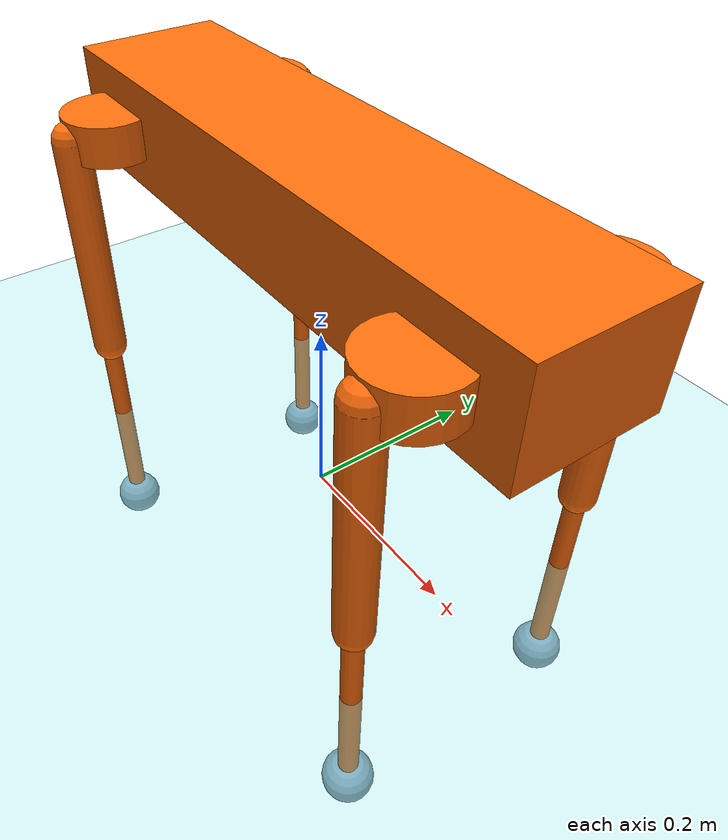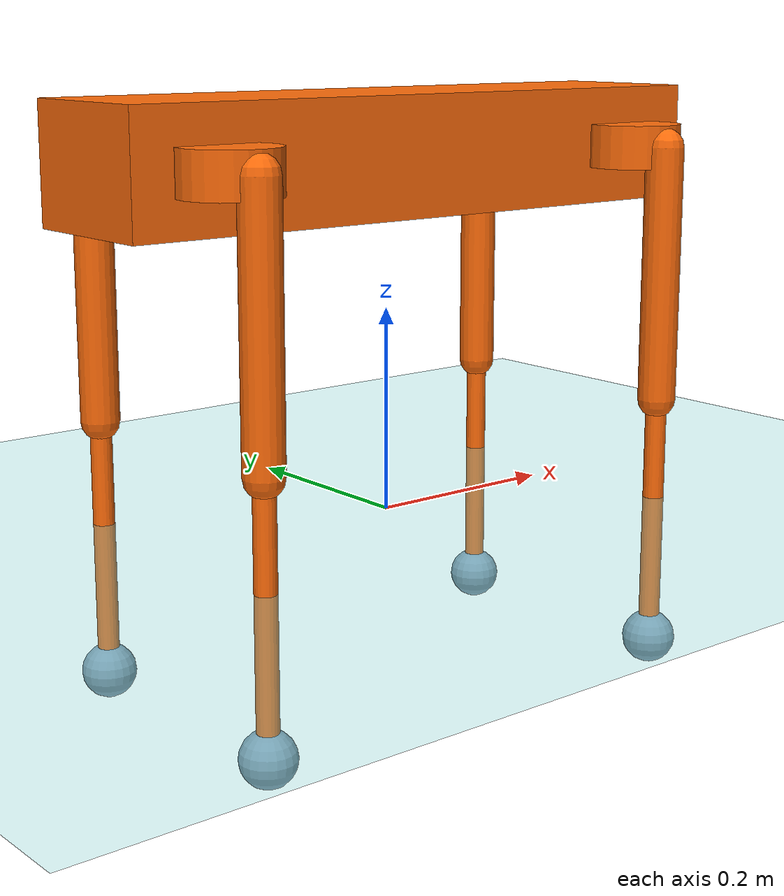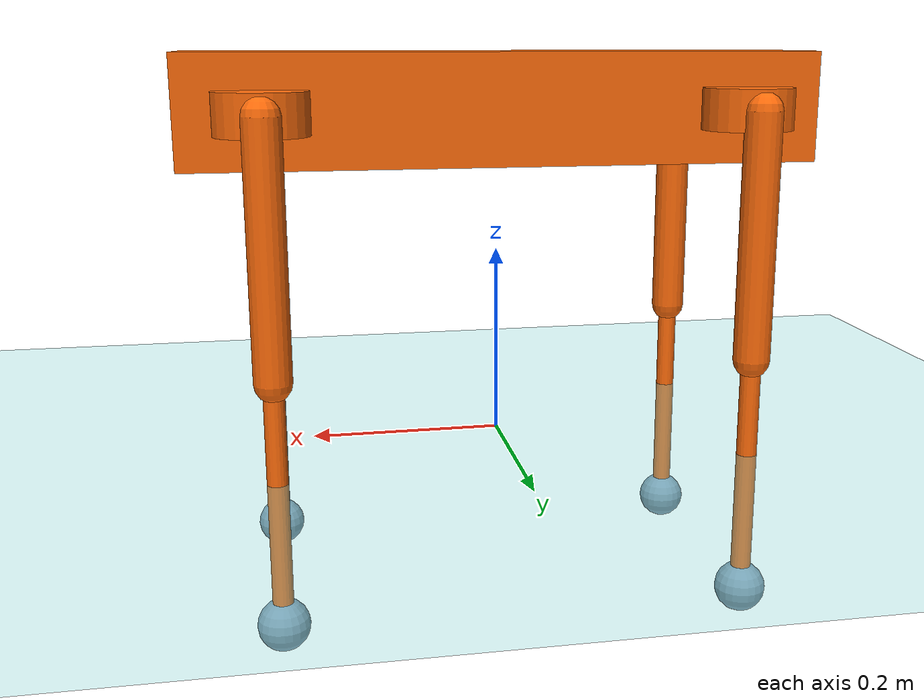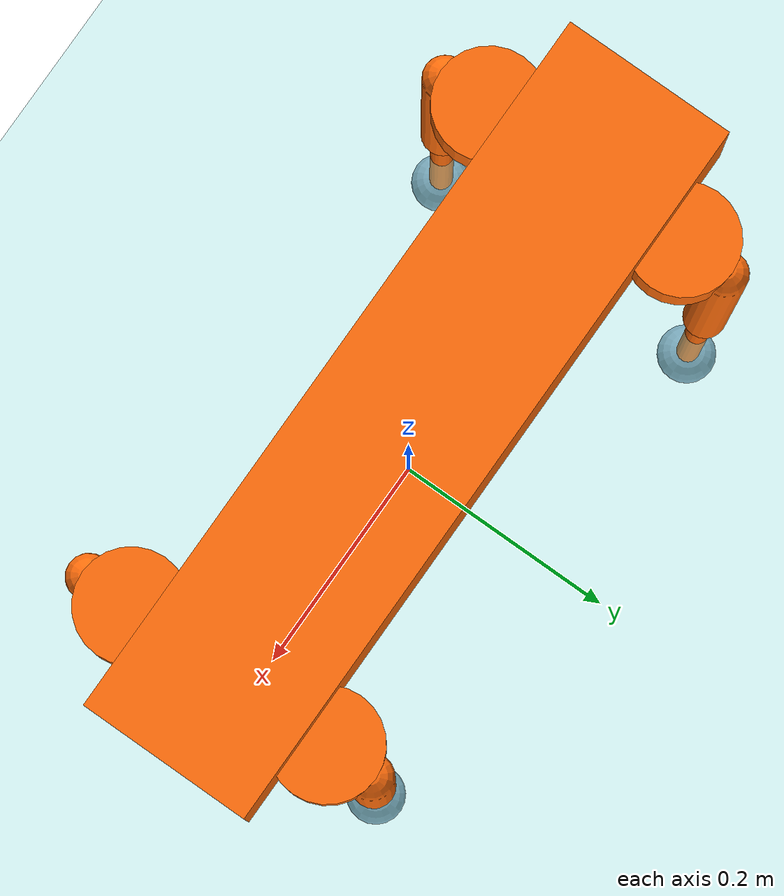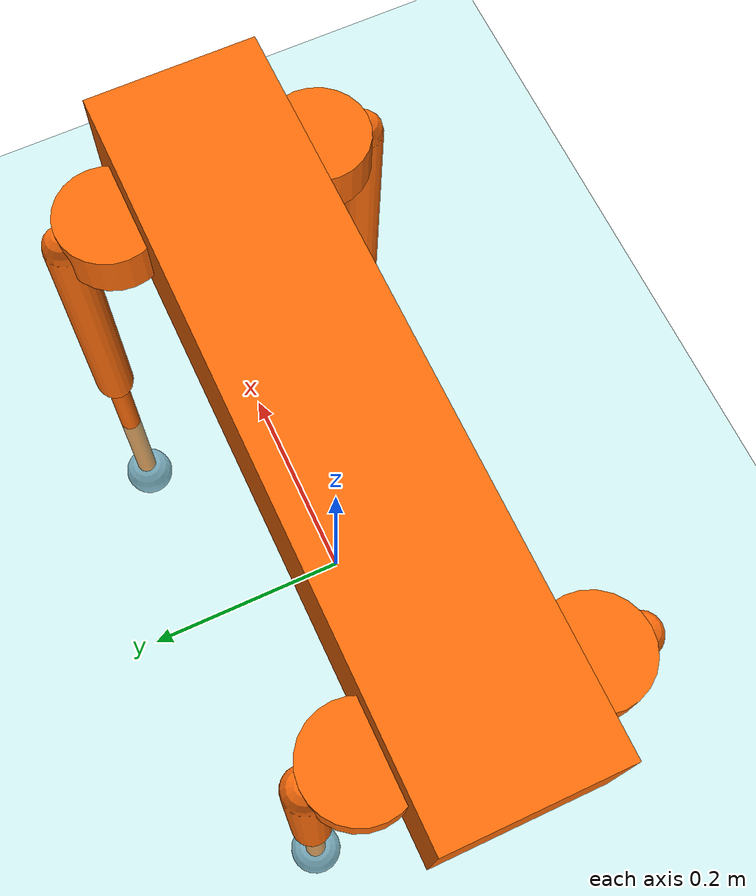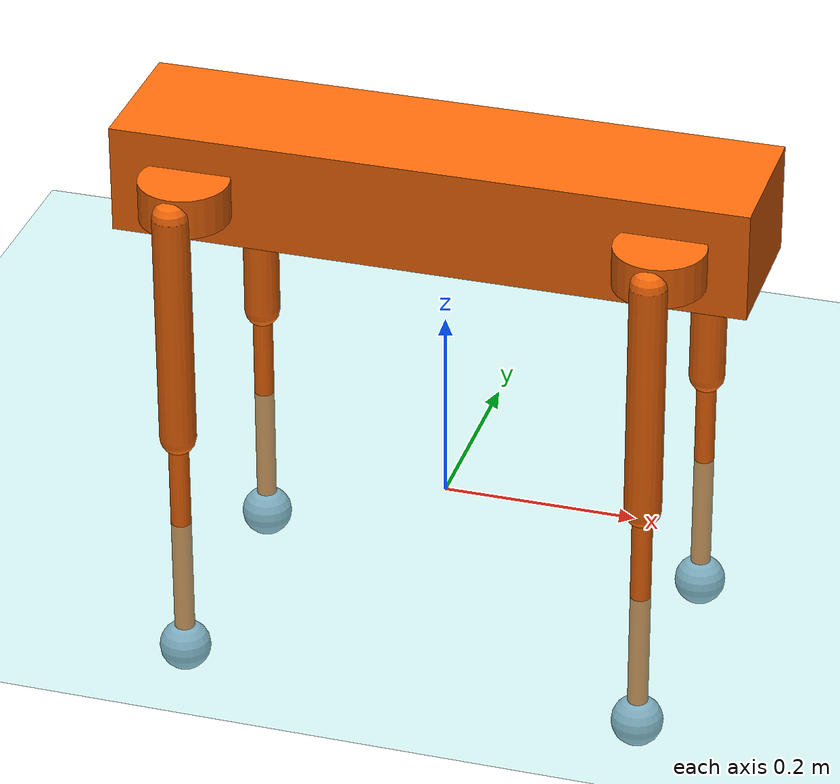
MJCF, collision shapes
<mujoco model="aliengo">
    <compiler angle="radian" meshdir="../meshes/" />

    <option iterations="50" timestep="0.002" />
    <custom>
        <!-- brax custom params -->
        <numeric data="0.0 0.0 0.34 1.0 0.0 0.0 0.0 -0.01014303 0.7180088 -1.4360176 0.01014303 0.7180088 -1.4360176 -0.01014303 0.7180088 -1.4360176 0.01014303 0.7180088 -1.4360176" name="init_qpos"/>
        <numeric data="0" name="matrix_inv_iterations"/>
        <numeric data="20" name="solver_maxls"/>
    </custom>

    <default>
        <geom contype="1" conaffinity="1" condim='3' rgba="0.5 0.6 0.7 1" group="0" />
        <light castshadow="false" diffuse="1 1 1"/>
        <motor ctrlrange="-44.0 44.0" ctrllimited="true"/>
        <camera fovy="60"/>
        <joint damping="0.0" armature="0.01" frictionloss="0.0" />
    </default>

    <asset>
        <mesh name="trunk" file="trunk.stl" />
        <mesh name="hip" file="hip.stl" />
        <mesh name="thigh_mirror" file="thigh_mirror.stl" />
        <mesh name="calf" file="calf.stl" />
        <mesh name="thigh" file="thigh.stl" />
    </asset>

    <asset>
        <texture type="skybox" builtin="gradient" rgb1="1.0 1.0 1.0" rgb2="1.0 1.0 1.0" width="512" height="512"/>
        <texture name="plane" type="2d" builtin="flat" rgb1="1 1 1" rgb2="1 1 1" width="512" height="512" mark="cross" markrgb="0 0 0"/>
        <material name="plane" reflectance="0.0" texture="plane" texrepeat="3 3" texuniform="true"/>
        <material name="orange" rgba="1.0 0.423529411765 0.0392156862745 1.0"/>
        <material name="green" rgba="0.0 0.8 0.0 1.0"/>
    </asset>

    <visual>
        <rgba com="0.502 1.0 0 0.5" contactforce="0.98 0.4 0.4 0.7" contactpoint="1.0 1.0 0.6 0.4"/>
        <scale com="0.2" forcewidth="0.035" contactwidth="0.10" contactheight="0.04"/>
    </visual>

    <worldbody>
        <light directional="true" diffuse=".8 .8 .8" pos="0 0 10" dir="0 0 -10"/>
        <camera name="track" mode="trackcom" pos="0 -1.3 1.6" xyaxes="1 0 0 0 0.707 0.707"/>
        <geom name='floor' type='plane' contype='1' conaffinity='0' rgba="0.5 0.9 0.9 0.1" material='plane' pos='0 0 0' size='10 10 0.1'/>

        <body name="trunk" pos="0 0 0.35">
            <inertial pos="0.008465 0.004045 -0.000763" mass="9.041" diaginertia="0.033260231 0.16117211 0.17460442" />
            <joint name="trunk" type="free" damping="0" armature="0" frictionloss="0"/>
            <geom type="mesh" contype="0" conaffinity="0" group="1" rgba="1.0 0.423529411765 0.0392156862745 1.0" mesh="trunk" />
            <geom contype="1" conaffinity="1" size="0.323 0.075 0.056" type="box" rgba="1.0 0.423529411765 0.0392156862745 0.1" />

            <body name="FR_hip" pos="0.2399 -0.051 0">
                <inertial pos="-0.022191 -0.015144 -1.5e-05" mass="1.993" diaginertia="0.002903894 0.004907517 0.005586944" />
                <joint name="FR_hip_joint" pos="0 0 0" axis="1 0 0" limited="true" range="-0.873 1.047" />
                <geom quat="0 1 0 0" type="mesh" contype="0" conaffinity="0" group="1" material="orange" mesh="hip" />
                <geom type="cylinder" size="0.046 0.0209" pos="0 -0.0415 0" contype="1" conaffinity="1" rgba="1.0 0.423529411765 0.0392156862745 0.1" />

                <body name="FR_thigh" pos="0 -0.083 0">
                    <inertial pos="-0.005607 0.003877 -0.048199" mass="0.639" diaginertia="0.005666803 0.005847229 0.000369811" />
                    <joint name="FR_thigh_joint" pos="0 0 0" axis="0 1 0" limited="true" range="-0.524 3.927" />
                    <geom type="mesh" contype="0" conaffinity="0" group="1" material="orange" mesh="thigh_mirror" />
                    <geom type="capsule" size="0.0187 0.125" pos="0 0 -0.125" contype="1" conaffinity="1" rgba="1.0 0.423529411765 0.0392156862745 0.1" />

                    <body name="FR_calf" pos="0 0 -0.25">
                        <inertial pos="0.002781 6.3e-05 -0.142518" mass="0.207" diaginertia="0.006341369 0.006355157 3.9188e-05" />
                        <joint name="FR_calf_joint" pos="0 0 0" axis="0 1 0" limited="true" range="-2.775 -0.611" />
                        <geom type="mesh" contype="0" conaffinity="0" group="1" material="orange" mesh="calf" />
                        <geom type="capsule" size="0.0104 0.125" pos="0 0 -0.125" contype="1" conaffinity="1" rgba="1.0 0.423529411765 0.0392156862745 0.1" />

                        <body name="FR_foot" pos="0 0 -0.25">
                            <inertial pos="0 0 0" mass="0.06" diaginertia="1.6854e-05 1.6854e-05 1.6854e-05" />
                            <geom size="0.0265" pos="0 0 0" type="sphere" material="green" contype="1" conaffinity="1" />
                        </body>
                    </body>
                </body>
            </body>

            <body name="FL_hip" pos="0.2399 0.051 0">
                <inertial pos="-0.022191 0.015144 -1.5e-05" mass="1.993" diaginertia="0.002903894 0.004907517 0.005586944" />
                <joint name="FL_hip_joint" pos="0 0 0" axis="1 0 0" limited="true" range="-0.873 1.047" />
                <geom type="mesh" contype="0" conaffinity="0" group="1" material="orange" mesh="hip" />
                <geom type="cylinder" size="0.046 0.0209" pos="0 0.0415 0" contype="1" conaffinity="1" rgba="1.0 0.423529411765 0.0392156862745 0.1" />

                <body name="FL_thigh" pos="0 0.083 0">
                    <inertial pos="-0.005607 -0.003877 -0.048199" mass="0.639" diaginertia="0.005666803 0.005847229 0.000369811" />
                    <joint name="FL_thigh_joint" pos="0 0 0" axis="0 1 0" limited="true" range="-0.524 3.927" />
                    <geom type="mesh" contype="0" conaffinity="0" group="1" material="orange" mesh="thigh" />
                    <geom type="capsule" size="0.0187 0.125" pos="0 0 -0.125" contype="1" conaffinity="1" rgba="1.0 0.423529411765 0.0392156862745 0.1" />

                    <body name="FL_calf" pos="0 0 -0.25">
                        <inertial pos="0.002781 6.3e-05 -0.142518" mass="0.207" diaginertia="0.006341369 0.006355157 3.9188e-05" />
                        <joint name="FL_calf_joint" pos="0 0 0" axis="0 1 0" limited="true" range="-2.775 -0.611" />
                        <geom type="mesh" contype="0" conaffinity="0" group="1" material="orange" mesh="calf" />
                        <geom type="capsule" size="0.0104 0.125" pos="0 0 -0.125" contype="1" conaffinity="1" rgba="1.0 0.423529411765 0.0392156862745 0.1" />

                        <body name="FL_foot" pos="0 0 -0.25">
                            <inertial pos="0 0 0" mass="0.06" diaginertia="1.6854e-05 1.6854e-05 1.6854e-05" />
                            <geom size="0.0265" pos="0 0 0" type="sphere" material="green" contype="1" conaffinity="1" />
                        </body>
                    </body>
                </body>
            </body>

            <body name="RR_hip" pos="-0.2399 -0.051 0">
                <inertial pos="0.022191 -0.015144 -1.5e-05" mass="1.993" diaginertia="0.002903894 0.004907517 0.005586944" />
                <joint name="RR_hip_joint" pos="0 0 0" axis="1 0 0" limited="true" range="-0.873 1.047" />
                <geom quat="0 0 0 -1" type="mesh" contype="0" conaffinity="0" group="1" material="orange" mesh="hip" />
                <geom type="cylinder" size="0.046 0.0209" pos="0 -0.0415 0" contype="1" conaffinity="1" rgba="1.0 0.423529411765 0.0392156862745 0.1" />

                <body name="RR_thigh" pos="0 -0.083 0">
                    <inertial pos="-0.005607 0.003877 -0.048199" mass="0.639" diaginertia="0.005666803 0.005847229 0.000369811" />
                    <joint name="RR_thigh_joint" pos="0 0 0" axis="0 1 0" limited="true" range="-0.524 3.927" />
                    <geom type="mesh" contype="0" conaffinity="0" group="1" material="orange" mesh="thigh_mirror" />
                    <geom type="capsule" size="0.0187 0.125" pos="0 0 -0.125" contype="1" conaffinity="1" rgba="1.0 0.423529411765 0.0392156862745 0.1" />

                    <body name="RR_calf" pos="0 0 -0.25">
                        <inertial pos="0.002781 6.3e-05 -0.142518" mass="0.207" diaginertia="0.006341369 0.006355157 3.9188e-05" />
                        <joint name="RR_calf_joint" pos="0 0 0" axis="0 1 0" limited="true" range="-2.775 -0.611" />
                        <geom type="mesh" contype="0" conaffinity="0" group="1" material="orange" mesh="calf" />
                        <geom type="capsule" size="0.0104 0.125" pos="0 0 -0.125" contype="1" conaffinity="1" rgba="1.0 0.423529411765 0.0392156862745 0.1" />

                        <body name="RR_foot" pos="0 0 -0.25">
                            <inertial pos="0 0 0" mass="0.06" diaginertia="1.6854e-05 1.6854e-05 1.6854e-05" />
                            <geom size="0.0265" pos="0 0 0" type="sphere" material="green" contype="1" conaffinity="1" />
                        </body>
                    </body>
                </body>
            </body>

            <body name="RL_hip" pos="-0.2399 0.051 0">
                <inertial pos="0.022191 0.015144 -1.5e-05" mass="1.993" diaginertia="0.002903894 0.004907517 0.005586944" />
                <joint name="RL_hip_joint" pos="0 0 0" axis="1 0 0" limited="true" range="-0.873 1.047" />
                <geom quat="0 0 1 0" type="mesh" contype="0" conaffinity="0" group="1" material="orange" mesh="hip" />
                <geom type="cylinder" size="0.046 0.0209" pos="0 0.0415 0" contype="1" conaffinity="1" rgba="1.0 0.423529411765 0.0392156862745 0.1" />

                <body name="RL_thigh" pos="0 0.083 0">
                    <inertial pos="-0.005607 -0.003877 -0.048199" mass="0.639" diaginertia="0.005666803 0.005847229 0.000369811" />
                    <joint name="RL_thigh_joint" pos="0 0 0" axis="0 1 0" limited="true" range="-0.524 3.927" />
                    <geom type="mesh" contype="0" conaffinity="0" group="1" material="orange" mesh="thigh" />
                    <geom type="capsule" size="0.0187 0.125" pos="0 0 -0.125" contype="1" conaffinity="1" rgba="1.0 0.423529411765 0.0392156862745 0.1" />

                    <body name="RL_calf" pos="0 0 -0.25">
                        <inertial pos="0.002781 6.3e-05 -0.142518" mass="0.207" diaginertia="0.006341369 0.006355157 3.9188e-05" />
                        <joint name="RL_calf_joint" pos="0 0 0" axis="0 1 0" limited="true" range="-2.775 -0.611" />
                        <geom type="mesh" contype="0" conaffinity="0" group="1" material="orange" mesh="calf" />
                        <geom type="capsule" size="0.0104 0.125" pos="0 0 -0.125" contype="1" conaffinity="1" rgba="1.0 0.423529411765 0.0392156862745 0.1" />

                        <body name="RL_foot" pos="0 0 -0.25">
                            <inertial pos="0 0 0" mass="0.06" diaginertia="1.6854e-05 1.6854e-05 1.6854e-05" />
                            <geom size="0.0265" pos="0 0 0" type="sphere" material="green" contype="1" conaffinity="1" />
                        </body>
                    </body>
                </body>
            </body>
        </body>
    </worldbody>

    <actuator>
        <motor name="FR_hip"       gear="1" joint="FR_hip_joint" ctrlrange="-44 44"/>
        <motor name="FR_thigh"     gear="1" joint="FR_thigh_joint" ctrlrange="-44 44"/>
        <motor name="FR_calf"      gear="1" joint="FR_calf_joint" ctrlrange="-55 55"/>
        <motor name="FL_hip"       gear="1" joint="FL_hip_joint" ctrlrange="-44 44"/>
        <motor name="FL_thigh"     gear="1" joint="FL_thigh_joint" ctrlrange="-44 44"/>
        <motor name="FL_calf"      gear="1" joint="FL_calf_joint" ctrlrange="-55 55"/>
        <motor name="RR_hip"       gear="1" joint="RR_hip_joint" ctrlrange="-44 44"/>
        <motor name="RR_thigh"     gear="1" joint="RR_thigh_joint" ctrlrange="-44 44"/>
        <motor name="RR_calf"      gear="1" joint="RR_calf_joint" ctrlrange="-55 55"/>
        <motor name="RL_hip"       gear="1" joint="RL_hip_joint" ctrlrange="-44 44"/>
        <motor name="RL_thigh"     gear="1" joint="RL_thigh_joint" ctrlrange="-44 44"/>
        <motor name="RL_calf"      gear="1" joint="RL_calf_joint" ctrlrange="-55 55"/>
    </actuator>
</mujoco>
